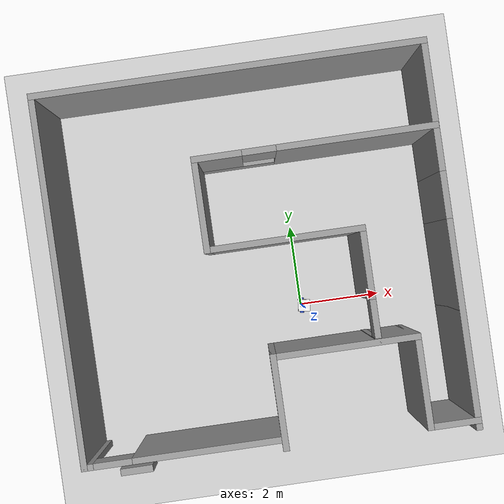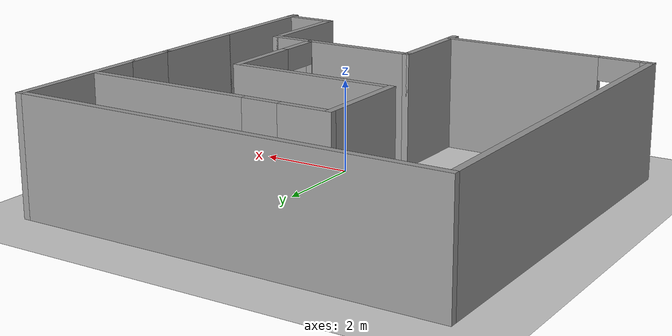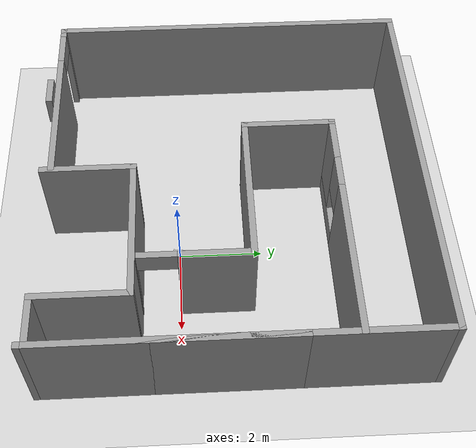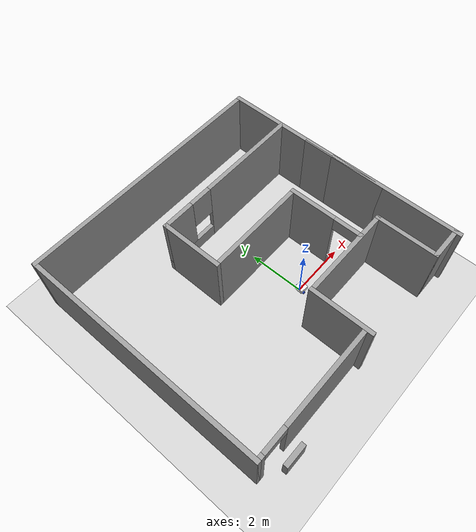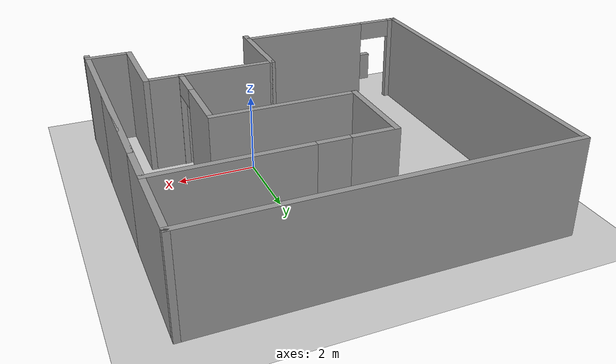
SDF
<sdf version="1.7">
 <world name="default">
  <light name="sun" type="directional">
   <pose>0 0 10 0 -0 0</pose>
   <diffuse>0.8 0.8 0.8 1</diffuse>
   <specular>0.2 0.2 0.2 1</specular>
   <attenuation>
    <range>1000</range>
    <constant>0.9</constant>
    <linear>0.01</linear>
    <quadratic>0.001</quadratic>
   </attenuation>
   <direction>-0.5 0.1 -0.9</direction>
   <spot><inner_angle>0</inner_angle><outer_angle>0</outer_angle><falloff>0</falloff></spot>
  </light>
  <model name="ground_plane">
   <static>1</static>
   <link name="link">
    <collision name="collision">
     <geometry><plane><normal>0 0 1</normal><size>100 100</size></plane></geometry>
     <surface><friction><ode><mu>100</mu><mu2>50</mu2></ode></friction></surface>
    </collision>
    <visual name="visual">
     <cast_shadows>0</cast_shadows>
     <geometry><plane><normal>0 0 1</normal><size>100 100</size></plane></geometry>
     <material>
      <script><uri>file://media/materials/scripts/gazebo.material</uri><name>Gazebo/Grey</name></script>
     </material>
    </visual>
   </link>
  </model>
  <gravity>0 0 -9.8</gravity>
  <magnetic_field>6e-06 2.3e-05 -4.2e-05</magnetic_field>
  <atmosphere type="adiabatic"/>
  <physics type="ode">
   <max_step_size>0.001</max_step_size>
   <real_time_factor>1</real_time_factor>
   <real_time_update_rate>1000</real_time_update_rate>
  </physics>
  <scene><ambient>0.4 0.4 0.4 1</ambient><background>0.7 0.7 0.7 1</background><shadows>1</shadows></scene>
  <audio><device>default</device></audio>
  <spherical_coordinates>
   <surface_model>EARTH_WGS84</surface_model>
   <latitude_deg>0</latitude_deg>
   <longitude_deg>0</longitude_deg>
   <elevation>0</elevation>
   <heading_deg>0</heading_deg>
  </spherical_coordinates>
  <model name="my_bot">
   <link name="base_link">
    <inertial>
     <pose>0.055714 0 0.078571 0 -0 0</pose>
     <mass>0.7</mass>
     <inertia>
      <ixx>0.0064169</ixx>
      <ixy>0</ixy>
      <ixz>0.00118929</ixz>
      <iyy>0.00745405</iyy>
      <iyz>0</iyz>
      <izz>0.00876214</izz>
     </inertia>
    </inertial>
    <collision name="base_link_fixed_joint_lump__chassis_collision">
     <pose>0.05 0 0.075 0 -0 0</pose>
     <geometry><box><size>0.3 0.3 0.15</size></box></geometry>
    </collision>
    <collision name="base_link_fixed_joint_lump__caster_wheel_collision_1">
     <pose>0.14 0 0 0 -0 0</pose>
     <geometry><sphere><radius>0.05</radius></sphere></geometry>
     <surface><friction><ode><mu>0.001</mu><mu2>0.001</mu2></ode></friction></surface>
    </collision>
    <collision name="base_link_fixed_joint_lump__laser_frame_collision_2">
     <pose>0 0 0.175 0 -0 0</pose>
     <geometry><cylinder><length>0.04</length><radius>0.05</radius></cylinder></geometry>
    </collision>
    <visual name="base_link_fixed_joint_lump__chassis_visual">
     <pose>0.05 0 0.075 0 -0 0</pose>
     <geometry><box><size>0.3 0.3 0.15</size></box></geometry>
     <material>
      <script><name>Gazebo/White</name><uri>file://media/materials/scripts/gazebo.material</uri></script>
     </material>
    </visual>
    <visual name="base_link_fixed_joint_lump__caster_wheel_visual_1">
     <pose>0.14 0 0 0 -0 0</pose>
     <geometry><sphere><radius>0.05</radius></sphere></geometry>
     <material>
      <script><name>Gazebo/Black</name><uri>file://media/materials/scripts/gazebo.material</uri></script>
     </material>
    </visual>
    <visual name="base_link_fixed_joint_lump__laser_frame_visual_2">
     <pose>0 0 0.175 0 -0 0</pose>
     <geometry><cylinder><length>0.04</length><radius>0.05</radius></cylinder></geometry>
     <material>
      <script><name>Gazebo/Red</name><uri>file://media/materials/scripts/gazebo.material</uri></script>
     </material>
    </visual>
    <sensor name="laser" type="ray">
     <visualize>1</visualize>
     <update_rate>10</update_rate>
     <ray>
      <scan>
       <horizontal>
        <samples>360</samples>
        <resolution>1</resolution>
        <min_angle>-3.14</min_angle>
        <max_angle>3.14</max_angle>
       </horizontal>
       <vertical><samples>1</samples><min_angle>0</min_angle><max_angle>0</max_angle></vertical>
      </scan>
      <range><min>0.3</min><max>12</max><resolution>0.01</resolution></range>
     </ray>
     <plugin name="laser_controller" filename="libgazebo_ros_ray_sensor.so">
      <ros><argument>~/out:=scan</argument></ros>
      <output_type>sensor_msgs/LaserScan</output_type>
      <frame_name>laser_frame</frame_name>
     </plugin>
     <pose>0 0 0.175 0 -0 0</pose>
    </sensor>
   </link>
   <joint name="left_wheel_joint" type="revolute">
    <pose relative_to="base_link">0 0.175 0 -1.5708 0 0</pose>
    <parent>base_link</parent>
    <child>left_wheel</child>
    <axis>
     <xyz>0 0 1</xyz>
     <limit><lower>-1e+16</lower><upper>1e+16</upper></limit>
     <dynamics><spring_reference>0</spring_reference><spring_stiffness>0</spring_stiffness></dynamics>
    </axis>
   </joint>
   <link name="left_wheel">
    <pose relative_to="left_wheel_joint">0 0 0 0 -0 0</pose>
    <inertial>
     <mass>0.1</mass>
     <inertia>
      <ixx>7.58333e-05</ixx>
      <ixy>0</ixy>
      <ixz>0</ixz>
      <iyy>7.58333e-05</iyy>
      <iyz>0</iyz>
      <izz>0.000125</izz>
     </inertia>
    </inertial>
    <collision name="left_wheel_collision">
     <geometry><cylinder><length>0.04</length><radius>0.05</radius></cylinder></geometry>
    </collision>
    <visual name="left_wheel_visual">
     <geometry><cylinder><length>0.04</length><radius>0.05</radius></cylinder></geometry>
     <material>
      <script><name>Gazebo/Blue</name><uri>file://media/materials/scripts/gazebo.material</uri></script>
     </material>
    </visual>
   </link>
   <joint name="right_wheel_joint" type="revolute">
    <pose relative_to="base_link">0 -0.175 0 1.5708 -0 0</pose>
    <parent>base_link</parent>
    <child>right_wheel</child>
    <axis>
     <xyz>0 0 -1</xyz>
     <limit><lower>-1e+16</lower><upper>1e+16</upper></limit>
     <dynamics><spring_reference>0</spring_reference><spring_stiffness>0</spring_stiffness></dynamics>
    </axis>
   </joint>
   <link name="right_wheel">
    <pose relative_to="right_wheel_joint">0 0 0 0 -0 0</pose>
    <inertial>
     <mass>0.1</mass>
     <inertia>
      <ixx>7.58333e-05</ixx>
      <ixy>0</ixy>
      <ixz>0</ixz>
      <iyy>7.58333e-05</iyy>
      <iyz>0</iyz>
      <izz>0.000125</izz>
     </inertia>
    </inertial>
    <collision name="right_wheel_collision">
     <geometry><cylinder><length>0.04</length><radius>0.05</radius></cylinder></geometry>
    </collision>
    <visual name="right_wheel_visual">
     <geometry><cylinder><length>0.04</length><radius>0.05</radius></cylinder></geometry>
     <material>
      <script><name>Gazebo/Blue</name><uri>file://media/materials/scripts/gazebo.material</uri></script>
     </material>
    </visual>
   </link>
   <static>0</static>
   <plugin name="diff_drive" filename="libgazebo_ros_diff_drive.so">
    <left_joint>left_wheel_joint</left_joint>
    <right_joint>right_wheel_joint</right_joint>
    <wheel_separation>0.35</wheel_separation>
    <wheel_diameter>0.1</wheel_diameter>
    <max_wheel_torque>200</max_wheel_torque>
    <max_wheel_acceleration>10.0</max_wheel_acceleration>
    <odometry_frame>odom</odometry_frame>
    <robot_base_frame>base_link</robot_base_frame>
    <publish_odom>1</publish_odom>
    <publish_odom_tf>1</publish_odom_tf>
    <publish_wheel_tf>1</publish_wheel_tf>
   </plugin>
   <pose>0.013338 -0.023276 0.05 0 1.3e-05 -0.120696</pose>
  </model>
  <model name="Room1">
   <pose>-1.03 1.255 0 0 -0 0</pose>
   <link name="Wall_0">
    <collision name="Wall_0_Collision">
     <geometry><box><size>2.25 0.15 2.5</size></box></geometry>
     <pose>0 0 1.25 0 -0 0</pose>
    </collision>
    <visual name="Wall_0_Visual">
     <pose>0 0 1.25 0 -0 0</pose>
     <geometry><box><size>2.25 0.15 2.5</size></box></geometry>
     <material>
      <script><uri>file://media/materials/scripts/gazebo.material</uri><name>Gazebo/Grey</name></script>
      <ambient>1 1 1 1</ambient>
     </material>
     <meta><layer>0</layer></meta>
    </visual>
    <pose>0.1 -3.275 0 0 -0 1.5708</pose>
   </link>
   <link name="Wall_1">
    <collision name="Wall_1_Collision">
     <geometry><box><size>3.5 0.15 2.5</size></box></geometry>
     <pose>0 0 1.25 0 -0 0</pose>
    </collision>
    <visual name="Wall_1_Visual">
     <pose>0 0 1.25 0 -0 0</pose>
     <geometry><box><size>3.5 0.15 2.5</size></box></geometry>
     <material>
      <script><uri>file://media/materials/scripts/gazebo.material</uri><name>Gazebo/Grey</name></script>
      <ambient>1 1 1 1</ambient>
     </material>
     <meta><layer>0</layer></meta>
    </visual>
    <pose>1.775 -2.225 0 0 -0 0</pose>
   </link>
   <link name="Wall_10">
    <collision name="Wall_10_Collision">
     <geometry><box><size>9.25 0.15 2.5</size></box></geometry>
     <pose>0 0 1.25 0 -0 0</pose>
    </collision>
    <visual name="Wall_10_Visual">
     <pose>0 0 1.25 0 -0 0</pose>
     <geometry><box><size>9.25 0.15 2.5</size></box></geometry>
     <material>
      <script><uri>file://media/materials/scripts/gazebo.material</uri><name>Gazebo/Grey</name></script>
      <ambient>1 1 1 1</ambient>
     </material>
     <meta><layer>0</layer></meta>
    </visual>
    <pose>0 4.475 0 0 -0 3.14159</pose>
   </link>
   <link name="Wall_11">
    <collision name="Wall_11_Collision">
     <geometry><box><size>8.75 0.15 2.5</size></box></geometry>
     <pose>0 0 1.25 0 -0 0</pose>
    </collision>
    <visual name="Wall_11_Visual">
     <pose>0 0 1.25 0 -0 0</pose>
     <geometry><box><size>8.75 0.15 2.5</size></box></geometry>
     <material>
      <script><uri>file://media/materials/scripts/gazebo.material</uri><name>Gazebo/Grey</name></script>
      <ambient>1 1 1 1</ambient>
     </material>
     <meta><layer>0</layer></meta>
    </visual>
    <pose>-4.55 0.175 0 0 -0 -1.5708</pose>
   </link>
   <link name="Wall_12">
    <pose>-2.25 -4.125 0 0 -0 0</pose>
    <visual name="Wall_12_Visual_0">
     <pose>-2.2302 0 1.25 0 -0 0</pose>
     <geometry><box><size>0.289607 0.15 2.5</size></box></geometry>
     <material>
      <script><uri>file://media/materials/scripts/gazebo.material</uri><name>Gazebo/Grey</name></script>
      <ambient>1 1 1 1</ambient>
     </material>
     <meta><layer>0</layer></meta>
    </visual>
    <collision name="Wall_12_Collision_0">
     <geometry><box><size>0.289607 0.15 2.5</size></box></geometry>
     <pose>-2.2302 0 1.25 0 -0 0</pose>
    </collision>
    <visual name="Wall_12_Visual_1">
     <pose>0.594803 0 1.25 0 -0 0</pose>
     <geometry><box><size>3.56039 0.15 2.5</size></box></geometry>
     <material>
      <script><uri>file://media/materials/scripts/gazebo.material</uri><name>Gazebo/Grey</name></script>
      <ambient>1 1 1 1</ambient>
     </material>
     <meta><layer>0</layer></meta>
    </visual>
    <collision name="Wall_12_Collision_1">
     <geometry><box><size>3.56039 0.15 2.5</size></box></geometry>
     <pose>0.594803 0 1.25 0 -0 0</pose>
    </collision>
    <visual name="Wall_12_Visual_2">
     <pose>-1.63539 0 2.25 0 -0 0</pose>
     <geometry><box><size>0.9 0.15 0.5</size></box></geometry>
     <material>
      <script><uri>file://media/materials/scripts/gazebo.material</uri><name>Gazebo/Grey</name></script>
      <ambient>1 1 1 1</ambient>
     </material>
     <meta><layer>0</layer></meta>
    </visual>
    <collision name="Wall_12_Collision_2">
     <geometry><box><size>0.9 0.15 0.5</size></box></geometry>
     <pose>-1.63539 0 2.25 0 -0 0</pose>
    </collision>
   </link>
   <link name="Wall_15">
    <pose>1.74687 2.51576 0 0 -0 3.14159</pose>
    <visual name="Wall_15_Visual_0">
     <pose>-0.989285 0 1.25 0 -0 0</pose>
     <geometry><box><size>3.77143 0.15 2.5</size></box></geometry>
     <material>
      <script><uri>file://media/materials/scripts/gazebo.material</uri><name>Gazebo/Grey</name></script>
      <ambient>1 1 1 1</ambient>
     </material>
     <meta><layer>0</layer></meta>
    </visual>
    <collision name="Wall_15_Collision_0">
     <geometry><box><size>3.77143 0.15 2.5</size></box></geometry>
     <pose>-0.989285 0 1.25 0 -0 0</pose>
    </collision>
    <visual name="Wall_15_Visual_1">
     <pose>1.88572 0 0.25 0 -0 0</pose>
     <geometry><box><size>1.97857 0.15 0.5</size></box></geometry>
     <material>
      <script><uri>file://media/materials/scripts/gazebo.material</uri><name>Gazebo/Grey</name></script>
      <ambient>1 1 1 1</ambient>
     </material>
     <meta><layer>0</layer></meta>
    </visual>
    <collision name="Wall_15_Collision_1">
     <geometry><box><size>1.97857 0.15 0.5</size></box></geometry>
     <pose>1.88572 0 0.25 0 -0 0</pose>
    </collision>
    <visual name="Wall_15_Visual_2">
     <pose>2.28572 0 1.5 0 -0 0</pose>
     <geometry><box><size>1.17857 0.15 2</size></box></geometry>
     <material>
      <script><uri>file://media/materials/scripts/gazebo.material</uri><name>Gazebo/Grey</name></script>
      <ambient>1 1 1 1</ambient>
     </material>
     <meta><layer>0</layer></meta>
    </visual>
    <collision name="Wall_15_Collision_2">
     <geometry><box><size>1.17857 0.15 2</size></box></geometry>
     <pose>2.28572 0 1.5 0 -0 0</pose>
    </collision>
    <visual name="Wall_15_Visual_3">
     <pose>1.29643 0 1.9 0 -0 0</pose>
     <geometry><box><size>0.8 0.15 1.2</size></box></geometry>
     <material>
      <script><uri>file://media/materials/scripts/gazebo.material</uri><name>Gazebo/Grey</name></script>
      <ambient>1 1 1 1</ambient>
     </material>
     <meta><layer>0</layer></meta>
    </visual>
    <collision name="Wall_15_Collision_3">
     <geometry><box><size>0.8 0.15 1.2</size></box></geometry>
     <pose>1.29643 0 1.9 0 -0 0</pose>
    </collision>
   </link>
   <link name="Wall_16">
    <collision name="Wall_16_Collision">
     <geometry><box><size>2.25 0.15 2.5</size></box></geometry>
     <pose>0 0 1.25 0 -0 0</pose>
    </collision>
    <visual name="Wall_16_Visual">
     <pose>0 0 1.25 0 -0 0</pose>
     <geometry><box><size>2.25 0.15 2.5</size></box></geometry>
     <material>
      <script><uri>file://media/materials/scripts/gazebo.material</uri><name>Gazebo/Grey</name></script>
      <ambient>1 1 1 1</ambient>
     </material>
     <meta><layer>0</layer></meta>
    </visual>
    <pose>-1.05313 1.46576 0 0 -0 -1.5708</pose>
   </link>
   <link name="Wall_17">
    <collision name="Wall_17_Collision">
     <geometry><box><size>3.75 0.15 2.5</size></box></geometry>
     <pose>0 0 1.25 0 -0 0</pose>
    </collision>
    <visual name="Wall_17_Visual">
     <pose>0 0 1.25 0 -0 0</pose>
     <geometry><box><size>3.75 0.15 2.5</size></box></geometry>
     <material>
      <script><uri>file://media/materials/scripts/gazebo.material</uri><name>Gazebo/Grey</name></script>
      <ambient>1 1 1 1</ambient>
     </material>
     <meta><layer>0</layer></meta>
    </visual>
    <pose>0.74687 0.415761 0 0 -0 0</pose>
   </link>
   <link name="Wall_18">
    <pose>2.54687 -0.884239 0 0 -0 -1.5708</pose>
    <visual name="Wall_18_Visual_0">
     <pose>-0.511084 0 1.25 0 -0 0</pose>
     <geometry><box><size>1.72783 0.15 2.5</size></box></geometry>
     <material>
      <script><uri>file://media/materials/scripts/gazebo.material</uri><name>Gazebo/Grey</name></script>
      <ambient>1 1 1 1</ambient>
     </material>
     <meta><layer>0</layer></meta>
    </visual>
    <collision name="Wall_18_Collision_0">
     <geometry><box><size>1.72783 0.15 2.5</size></box></geometry>
     <pose>-0.511084 0 1.25 0 -0 0</pose>
    </collision>
    <visual name="Wall_18_Visual_1">
     <pose>1.31392 0 1.25 0 -0 0</pose>
     <geometry><box><size>0.122169 0.15 2.5</size></box></geometry>
     <material>
      <script><uri>file://media/materials/scripts/gazebo.material</uri><name>Gazebo/Grey</name></script>
      <ambient>1 1 1 1</ambient>
     </material>
     <meta><layer>0</layer></meta>
    </visual>
    <collision name="Wall_18_Collision_1">
     <geometry><box><size>0.122169 0.15 2.5</size></box></geometry>
     <pose>1.31392 0 1.25 0 -0 0</pose>
    </collision>
    <visual name="Wall_18_Visual_2">
     <pose>0.802831 0 2.25 0 -0 0</pose>
     <geometry><box><size>0.9 0.15 0.5</size></box></geometry>
     <material>
      <script><uri>file://media/materials/scripts/gazebo.material</uri><name>Gazebo/Grey</name></script>
      <ambient>1 1 1 1</ambient>
     </material>
     <meta><layer>0</layer></meta>
    </visual>
    <collision name="Wall_18_Collision_2">
     <geometry><box><size>0.9 0.15 0.5</size></box></geometry>
     <pose>0.802831 0 2.25 0 -0 0</pose>
    </collision>
   </link>
   <link name="Wall_2">
    <collision name="Wall_2_Collision">
     <geometry><box><size>2.25 0.15 2.5</size></box></geometry>
     <pose>0 0 1.25 0 -0 0</pose>
    </collision>
    <visual name="Wall_2_Visual">
     <pose>0 0 1.25 0 -0 0</pose>
     <geometry><box><size>2.25 0.15 2.5</size></box></geometry>
     <material>
      <script><uri>file://media/materials/scripts/gazebo.material</uri><name>Gazebo/Grey</name></script>
      <ambient>1 1 1 1</ambient>
     </material>
     <meta><layer>0</layer></meta>
    </visual>
    <pose>3.45 -3.275 0 0 -0 -1.5708</pose>
   </link>
   <link name="Wall_3">
    <collision name="Wall_3_Collision">
     <geometry><box><size>1.25 0.15 2.5</size></box></geometry>
     <pose>0 0 1.25 0 -0 0</pose>
    </collision>
    <visual name="Wall_3_Visual">
     <pose>0 0 1.25 0 -0 0</pose>
     <geometry><box><size>1.25 0.15 2.5</size></box></geometry>
     <material>
      <script><uri>file://media/materials/scripts/gazebo.material</uri><name>Gazebo/Grey</name></script>
      <ambient>1 1 1 1</ambient>
     </material>
     <meta><layer>0</layer></meta>
    </visual>
    <pose>4 -4.325 0 0 -0 0</pose>
   </link>
   <link name="Wall_5">
    <collision name="Wall_5_Collision">
     <geometry><box><size>4.75 0.15 2.5</size></box></geometry>
     <pose>0 0 1.25 0 -0 0</pose>
    </collision>
    <visual name="Wall_5_Visual">
     <pose>0 0 1.25 0 -0 0</pose>
     <geometry><box><size>4.75 0.15 2.5</size></box></geometry>
     <material>
      <script><uri>file://media/materials/scripts/gazebo.material</uri><name>Gazebo/Grey</name></script>
      <ambient>1 1 1 1</ambient>
     </material>
     <meta><layer>0</layer></meta>
    </visual>
    <pose>4.55 -2.025 0 0 -0 1.5708</pose>
   </link>
   <link name="Wall_6">
    <collision name="Wall_6_Collision">
     <geometry><box><size>1.25 0.15 2.5</size></box></geometry>
     <pose>0 0 1.25 0 -0 0</pose>
    </collision>
    <visual name="Wall_6_Visual">
     <pose>0 0 1.25 0 -0 0</pose>
     <geometry><box><size>1.25 0.15 2.5</size></box></geometry>
     <material>
      <script><uri>file://media/materials/scripts/gazebo.material</uri><name>Gazebo/Grey</name></script>
      <ambient>1 1 1 1</ambient>
     </material>
     <meta><layer>0</layer></meta>
    </visual>
    <pose>4.55 0.825 0 0 -0 1.5708</pose>
   </link>
   <link name="Wall_7">
    <collision name="Wall_7_Collision">
     <geometry><box><size>6 0.15 2.5</size></box></geometry>
     <pose>0 0 1.25 0 -0 0</pose>
    </collision>
    <visual name="Wall_7_Visual">
     <pose>0 0 1.25 0 -0 0</pose>
     <geometry><box><size>6 0.15 2.5</size></box></geometry>
     <material>
      <script><uri>file://media/materials/scripts/gazebo.material</uri><name>Gazebo/Grey</name></script>
      <ambient>1 1 1 1</ambient>
     </material>
     <meta><layer>0</layer></meta>
    </visual>
    <pose>4.55 -1.55 0 0 -0 -1.5708</pose>
   </link>
   <link name="Wall_9">
    <collision name="Wall_9_Collision">
     <geometry><box><size>3.25 0.15 2.5</size></box></geometry>
     <pose>0 0 1.25 0 -0 0</pose>
    </collision>
    <visual name="Wall_9_Visual">
     <pose>0 0 1.25 0 -0 0</pose>
     <geometry><box><size>3.25 0.15 2.5</size></box></geometry>
     <material>
      <script><uri>file://media/materials/scripts/gazebo.material</uri><name>Gazebo/Grey</name></script>
      <ambient>1 1 1 1</ambient>
     </material>
     <meta><layer>0</layer></meta>
    </visual>
    <pose>4.55 2.925 0 0 -0 1.5708</pose>
   </link>
   <link name="Window_1">
    <collision name="Window_1_Collision">
     <geometry><box><size>0.8 0.17 0.8</size></box></geometry>
     <pose>0 0 0.4 0 -0 0</pose>
    </collision>
    <visual name="Window_1_Visual">
     <pose>0 0 0.4 0 -0 0</pose>
     <geometry><box><size>0.8 0.17 0.8</size></box></geometry>
     <material>
      <script><uri>file://media/materials/scripts/gazebo.material</uri><name>Gazebo/Grey</name></script>
     </material>
    </visual>
    <pose>-3.57582 -4.62222 0.5 0 -0 0</pose>
   </link>
   <static>1</static>
  </model>
 </world>
</sdf>
